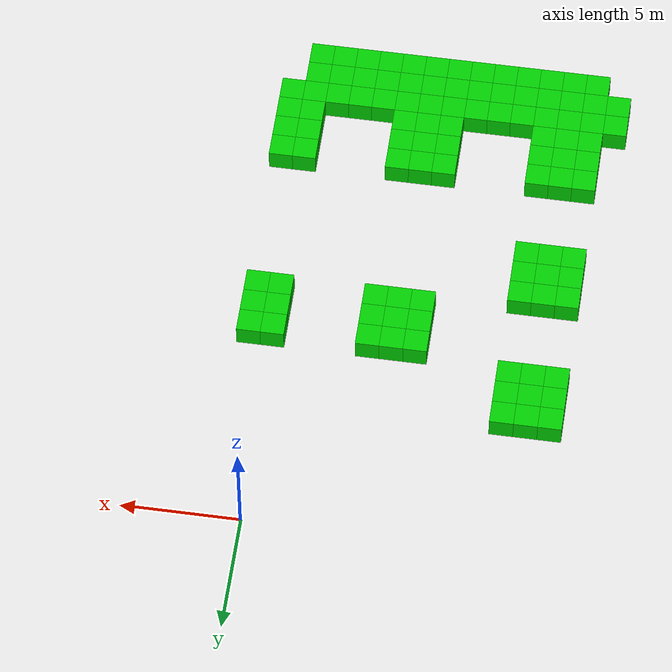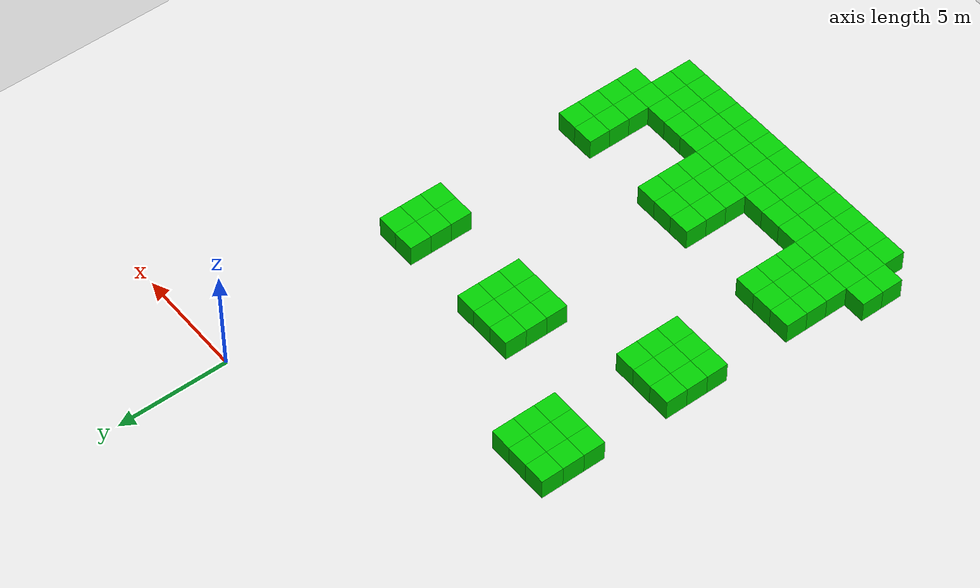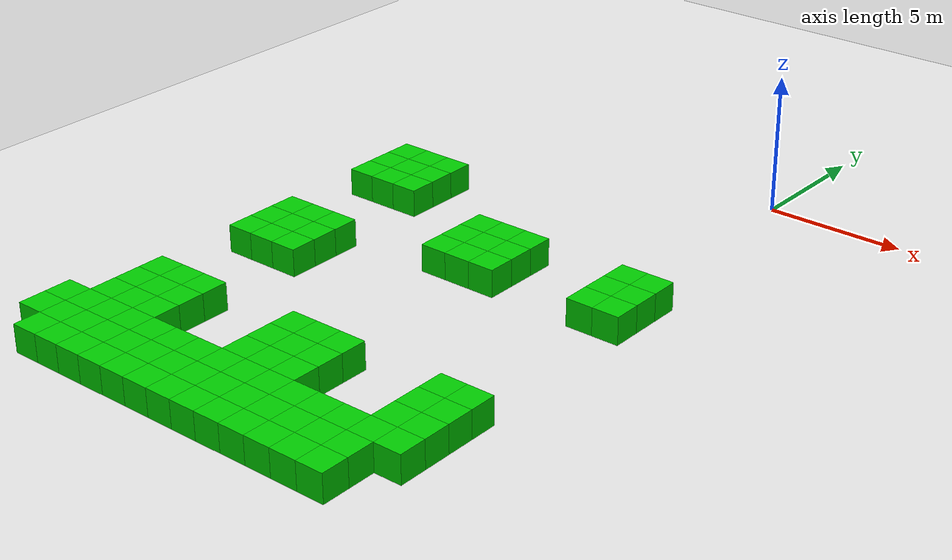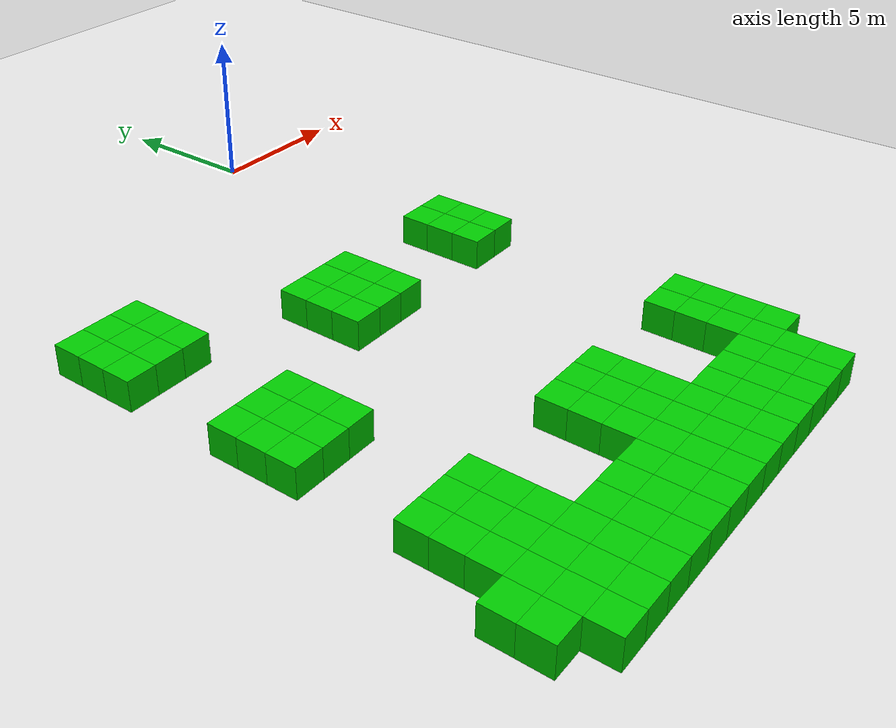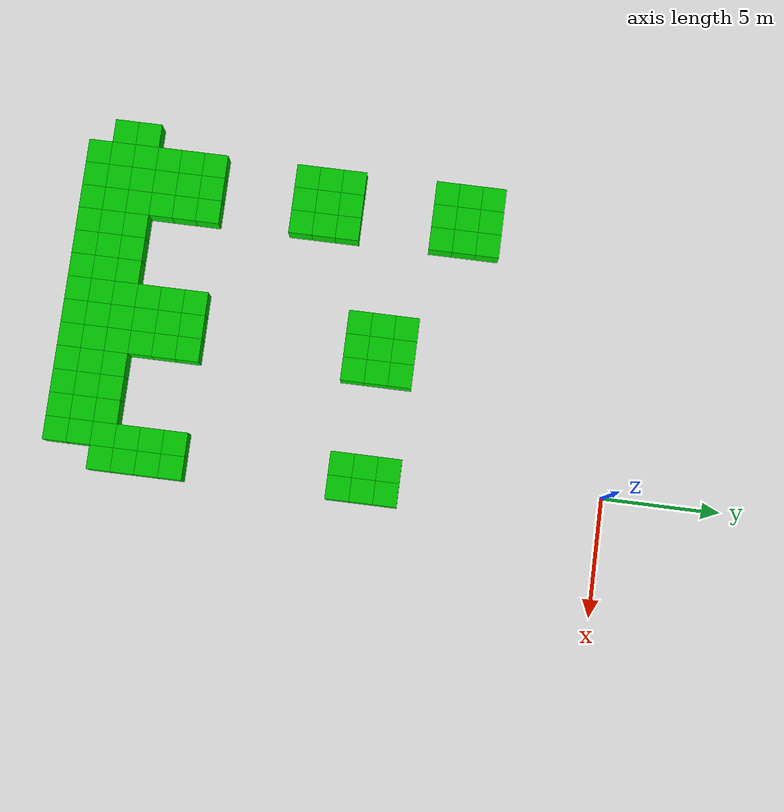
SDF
<sdf version="1.6">
 <world name="generated_maze">
  <model name="ground_plane">
   <static>true</static>
   <link name="link">
    <collision name="collision">
     <geometry><plane><normal>0 0 1</normal><size>100 100</size></plane></geometry>
    </collision>
    <visual name="visual">
     <geometry><plane><normal>0 0 1</normal><size>100 100</size></plane></geometry>
     <material>
      <ambient>0.9 0.9 0.9 1</ambient>
      <diffuse>0.9 0.9 0.9 1</diffuse>
      <specular>0.3 0.3 0.3 1</specular>
     </material>
    </visual>
   </link>
  </model>
  <model name="wall_30_12">
   <static>true</static>
   <pose>-12 -6 0.5 0 0 0</pose>
   <link name="link">
    <collision name="collision"><geometry><box><size>1 1 1</size></box></geometry></collision>
    <visual name="visual">
     <geometry><box><size>1 1 1</size></box></geometry>
     <material>
      <ambient>0.0 0.8 0.0 1</ambient>
      <diffuse>0.0 0.8 0.0 1</diffuse>
      <specular>0.1 0.1 0.1 1</specular>
     </material>
    </visual>
   </link>
  </model>
  <model name="wall_30_13">
   <static>true</static>
   <pose>-11 -6 0.5 0 0 0</pose>
   <link name="link">
    <collision name="collision"><geometry><box><size>1 1 1</size></box></geometry></collision>
    <visual name="visual">
     <geometry><box><size>1 1 1</size></box></geometry>
     <material>
      <ambient>0.0 0.8 0.0 1</ambient>
      <diffuse>0.0 0.8 0.0 1</diffuse>
      <specular>0.1 0.1 0.1 1</specular>
     </material>
    </visual>
   </link>
  </model>
  <model name="wall_30_14">
   <static>true</static>
   <pose>-10 -6 0.5 0 0 0</pose>
   <link name="link">
    <collision name="collision"><geometry><box><size>1 1 1</size></box></geometry></collision>
    <visual name="visual">
     <geometry><box><size>1 1 1</size></box></geometry>
     <material>
      <ambient>0.0 0.8 0.0 1</ambient>
      <diffuse>0.0 0.8 0.0 1</diffuse>
      <specular>0.1 0.1 0.1 1</specular>
     </material>
    </visual>
   </link>
  </model>
  <model name="wall_31_12">
   <static>true</static>
   <pose>-12 -7 0.5 0 0 0</pose>
   <link name="link">
    <collision name="collision"><geometry><box><size>1 1 1</size></box></geometry></collision>
    <visual name="visual">
     <geometry><box><size>1 1 1</size></box></geometry>
     <material>
      <ambient>0.0 0.8 0.0 1</ambient>
      <diffuse>0.0 0.8 0.0 1</diffuse>
      <specular>0.1 0.1 0.1 1</specular>
     </material>
    </visual>
   </link>
  </model>
  <model name="wall_31_13">
   <static>true</static>
   <pose>-11 -7 0.5 0 0 0</pose>
   <link name="link">
    <collision name="collision"><geometry><box><size>1 1 1</size></box></geometry></collision>
    <visual name="visual">
     <geometry><box><size>1 1 1</size></box></geometry>
     <material>
      <ambient>0.0 0.8 0.0 1</ambient>
      <diffuse>0.0 0.8 0.0 1</diffuse>
      <specular>0.1 0.1 0.1 1</specular>
     </material>
    </visual>
   </link>
  </model>
  <model name="wall_31_14">
   <static>true</static>
   <pose>-10 -7 0.5 0 0 0</pose>
   <link name="link">
    <collision name="collision"><geometry><box><size>1 1 1</size></box></geometry></collision>
    <visual name="visual">
     <geometry><box><size>1 1 1</size></box></geometry>
     <material>
      <ambient>0.0 0.8 0.0 1</ambient>
      <diffuse>0.0 0.8 0.0 1</diffuse>
      <specular>0.1 0.1 0.1 1</specular>
     </material>
    </visual>
   </link>
  </model>
  <model name="wall_32_12">
   <static>true</static>
   <pose>-12 -8 0.5 0 0 0</pose>
   <link name="link">
    <collision name="collision"><geometry><box><size>1 1 1</size></box></geometry></collision>
    <visual name="visual">
     <geometry><box><size>1 1 1</size></box></geometry>
     <material>
      <ambient>0.0 0.8 0.0 1</ambient>
      <diffuse>0.0 0.8 0.0 1</diffuse>
      <specular>0.1 0.1 0.1 1</specular>
     </material>
    </visual>
   </link>
  </model>
  <model name="wall_32_13">
   <static>true</static>
   <pose>-11 -8 0.5 0 0 0</pose>
   <link name="link">
    <collision name="collision"><geometry><box><size>1 1 1</size></box></geometry></collision>
    <visual name="visual">
     <geometry><box><size>1 1 1</size></box></geometry>
     <material>
      <ambient>0.0 0.8 0.0 1</ambient>
      <diffuse>0.0 0.8 0.0 1</diffuse>
      <specular>0.1 0.1 0.1 1</specular>
     </material>
    </visual>
   </link>
  </model>
  <model name="wall_32_14">
   <static>true</static>
   <pose>-10 -8 0.5 0 0 0</pose>
   <link name="link">
    <collision name="collision"><geometry><box><size>1 1 1</size></box></geometry></collision>
    <visual name="visual">
     <geometry><box><size>1 1 1</size></box></geometry>
     <material>
      <ambient>0.0 0.8 0.0 1</ambient>
      <diffuse>0.0 0.8 0.0 1</diffuse>
      <specular>0.1 0.1 0.1 1</specular>
     </material>
    </visual>
   </link>
  </model>
  <model name="wall_33_18">
   <static>true</static>
   <pose>-6 -9 0.5 0 0 0</pose>
   <link name="link">
    <collision name="collision"><geometry><box><size>1 1 1</size></box></geometry></collision>
    <visual name="visual">
     <geometry><box><size>1 1 1</size></box></geometry>
     <material>
      <ambient>0.0 0.8 0.0 1</ambient>
      <diffuse>0.0 0.8 0.0 1</diffuse>
      <specular>0.1 0.1 0.1 1</specular>
     </material>
    </visual>
   </link>
  </model>
  <model name="wall_33_19">
   <static>true</static>
   <pose>-5 -9 0.5 0 0 0</pose>
   <link name="link">
    <collision name="collision"><geometry><box><size>1 1 1</size></box></geometry></collision>
    <visual name="visual">
     <geometry><box><size>1 1 1</size></box></geometry>
     <material>
      <ambient>0.0 0.8 0.0 1</ambient>
      <diffuse>0.0 0.8 0.0 1</diffuse>
      <specular>0.1 0.1 0.1 1</specular>
     </material>
    </visual>
   </link>
  </model>
  <model name="wall_33_20">
   <static>true</static>
   <pose>-4 -9 0.5 0 0 0</pose>
   <link name="link">
    <collision name="collision"><geometry><box><size>1 1 1</size></box></geometry></collision>
    <visual name="visual">
     <geometry><box><size>1 1 1</size></box></geometry>
     <material>
      <ambient>0.0 0.8 0.0 1</ambient>
      <diffuse>0.0 0.8 0.0 1</diffuse>
      <specular>0.1 0.1 0.1 1</specular>
     </material>
    </visual>
   </link>
  </model>
  <model name="wall_33_24">
   <static>true</static>
   <pose>0 -9 0.5 0 0 0</pose>
   <link name="link">
    <collision name="collision"><geometry><box><size>1 1 1</size></box></geometry></collision>
    <visual name="visual">
     <geometry><box><size>1 1 1</size></box></geometry>
     <material>
      <ambient>0.0 0.8 0.0 1</ambient>
      <diffuse>0.0 0.8 0.0 1</diffuse>
      <specular>0.1 0.1 0.1 1</specular>
     </material>
    </visual>
   </link>
  </model>
  <model name="wall_33_25">
   <static>true</static>
   <pose>1 -9 0.5 0 0 0</pose>
   <link name="link">
    <collision name="collision"><geometry><box><size>1 1 1</size></box></geometry></collision>
    <visual name="visual">
     <geometry><box><size>1 1 1</size></box></geometry>
     <material>
      <ambient>0.0 0.8 0.0 1</ambient>
      <diffuse>0.0 0.8 0.0 1</diffuse>
      <specular>0.1 0.1 0.1 1</specular>
     </material>
    </visual>
   </link>
  </model>
  <model name="wall_34_18">
   <static>true</static>
   <pose>-6 -10 0.5 0 0 0</pose>
   <link name="link">
    <collision name="collision"><geometry><box><size>1 1 1</size></box></geometry></collision>
    <visual name="visual">
     <geometry><box><size>1 1 1</size></box></geometry>
     <material>
      <ambient>0.0 0.8 0.0 1</ambient>
      <diffuse>0.0 0.8 0.0 1</diffuse>
      <specular>0.1 0.1 0.1 1</specular>
     </material>
    </visual>
   </link>
  </model>
  <model name="wall_34_19">
   <static>true</static>
   <pose>-5 -10 0.5 0 0 0</pose>
   <link name="link">
    <collision name="collision"><geometry><box><size>1 1 1</size></box></geometry></collision>
    <visual name="visual">
     <geometry><box><size>1 1 1</size></box></geometry>
     <material>
      <ambient>0.0 0.8 0.0 1</ambient>
      <diffuse>0.0 0.8 0.0 1</diffuse>
      <specular>0.1 0.1 0.1 1</specular>
     </material>
    </visual>
   </link>
  </model>
  <model name="wall_34_20">
   <static>true</static>
   <pose>-4 -10 0.5 0 0 0</pose>
   <link name="link">
    <collision name="collision"><geometry><box><size>1 1 1</size></box></geometry></collision>
    <visual name="visual">
     <geometry><box><size>1 1 1</size></box></geometry>
     <material>
      <ambient>0.0 0.8 0.0 1</ambient>
      <diffuse>0.0 0.8 0.0 1</diffuse>
      <specular>0.1 0.1 0.1 1</specular>
     </material>
    </visual>
   </link>
  </model>
  <model name="wall_34_24">
   <static>true</static>
   <pose>0 -10 0.5 0 0 0</pose>
   <link name="link">
    <collision name="collision"><geometry><box><size>1 1 1</size></box></geometry></collision>
    <visual name="visual">
     <geometry><box><size>1 1 1</size></box></geometry>
     <material>
      <ambient>0.0 0.8 0.0 1</ambient>
      <diffuse>0.0 0.8 0.0 1</diffuse>
      <specular>0.1 0.1 0.1 1</specular>
     </material>
    </visual>
   </link>
  </model>
  <model name="wall_34_25">
   <static>true</static>
   <pose>1 -10 0.5 0 0 0</pose>
   <link name="link">
    <collision name="collision"><geometry><box><size>1 1 1</size></box></geometry></collision>
    <visual name="visual">
     <geometry><box><size>1 1 1</size></box></geometry>
     <material>
      <ambient>0.0 0.8 0.0 1</ambient>
      <diffuse>0.0 0.8 0.0 1</diffuse>
      <specular>0.1 0.1 0.1 1</specular>
     </material>
    </visual>
   </link>
  </model>
  <model name="wall_35_18">
   <static>true</static>
   <pose>-6 -11 0.5 0 0 0</pose>
   <link name="link">
    <collision name="collision"><geometry><box><size>1 1 1</size></box></geometry></collision>
    <visual name="visual">
     <geometry><box><size>1 1 1</size></box></geometry>
     <material>
      <ambient>0.0 0.8 0.0 1</ambient>
      <diffuse>0.0 0.8 0.0 1</diffuse>
      <specular>0.1 0.1 0.1 1</specular>
     </material>
    </visual>
   </link>
  </model>
  <model name="wall_35_19">
   <static>true</static>
   <pose>-5 -11 0.5 0 0 0</pose>
   <link name="link">
    <collision name="collision"><geometry><box><size>1 1 1</size></box></geometry></collision>
    <visual name="visual">
     <geometry><box><size>1 1 1</size></box></geometry>
     <material>
      <ambient>0.0 0.8 0.0 1</ambient>
      <diffuse>0.0 0.8 0.0 1</diffuse>
      <specular>0.1 0.1 0.1 1</specular>
     </material>
    </visual>
   </link>
  </model>
  <model name="wall_35_20">
   <static>true</static>
   <pose>-4 -11 0.5 0 0 0</pose>
   <link name="link">
    <collision name="collision"><geometry><box><size>1 1 1</size></box></geometry></collision>
    <visual name="visual">
     <geometry><box><size>1 1 1</size></box></geometry>
     <material>
      <ambient>0.0 0.8 0.0 1</ambient>
      <diffuse>0.0 0.8 0.0 1</diffuse>
      <specular>0.1 0.1 0.1 1</specular>
     </material>
    </visual>
   </link>
  </model>
  <model name="wall_35_24">
   <static>true</static>
   <pose>0 -11 0.5 0 0 0</pose>
   <link name="link">
    <collision name="collision"><geometry><box><size>1 1 1</size></box></geometry></collision>
    <visual name="visual">
     <geometry><box><size>1 1 1</size></box></geometry>
     <material>
      <ambient>0.0 0.8 0.0 1</ambient>
      <diffuse>0.0 0.8 0.0 1</diffuse>
      <specular>0.1 0.1 0.1 1</specular>
     </material>
    </visual>
   </link>
  </model>
  <model name="wall_35_25">
   <static>true</static>
   <pose>1 -11 0.5 0 0 0</pose>
   <link name="link">
    <collision name="collision"><geometry><box><size>1 1 1</size></box></geometry></collision>
    <visual name="visual">
     <geometry><box><size>1 1 1</size></box></geometry>
     <material>
      <ambient>0.0 0.8 0.0 1</ambient>
      <diffuse>0.0 0.8 0.0 1</diffuse>
      <specular>0.1 0.1 0.1 1</specular>
     </material>
    </visual>
   </link>
  </model>
  <model name="wall_36_12">
   <static>true</static>
   <pose>-12 -12 0.5 0 0 0</pose>
   <link name="link">
    <collision name="collision"><geometry><box><size>1 1 1</size></box></geometry></collision>
    <visual name="visual">
     <geometry><box><size>1 1 1</size></box></geometry>
     <material>
      <ambient>0.0 0.8 0.0 1</ambient>
      <diffuse>0.0 0.8 0.0 1</diffuse>
      <specular>0.1 0.1 0.1 1</specular>
     </material>
    </visual>
   </link>
  </model>
  <model name="wall_36_13">
   <static>true</static>
   <pose>-11 -12 0.5 0 0 0</pose>
   <link name="link">
    <collision name="collision"><geometry><box><size>1 1 1</size></box></geometry></collision>
    <visual name="visual">
     <geometry><box><size>1 1 1</size></box></geometry>
     <material>
      <ambient>0.0 0.8 0.0 1</ambient>
      <diffuse>0.0 0.8 0.0 1</diffuse>
      <specular>0.1 0.1 0.1 1</specular>
     </material>
    </visual>
   </link>
  </model>
  <model name="wall_36_14">
   <static>true</static>
   <pose>-10 -12 0.5 0 0 0</pose>
   <link name="link">
    <collision name="collision"><geometry><box><size>1 1 1</size></box></geometry></collision>
    <visual name="visual">
     <geometry><box><size>1 1 1</size></box></geometry>
     <material>
      <ambient>0.0 0.8 0.0 1</ambient>
      <diffuse>0.0 0.8 0.0 1</diffuse>
      <specular>0.1 0.1 0.1 1</specular>
     </material>
    </visual>
   </link>
  </model>
  <model name="wall_37_12">
   <static>true</static>
   <pose>-12 -13 0.5 0 0 0</pose>
   <link name="link">
    <collision name="collision"><geometry><box><size>1 1 1</size></box></geometry></collision>
    <visual name="visual">
     <geometry><box><size>1 1 1</size></box></geometry>
     <material>
      <ambient>0.0 0.8 0.0 1</ambient>
      <diffuse>0.0 0.8 0.0 1</diffuse>
      <specular>0.1 0.1 0.1 1</specular>
     </material>
    </visual>
   </link>
  </model>
  <model name="wall_37_13">
   <static>true</static>
   <pose>-11 -13 0.5 0 0 0</pose>
   <link name="link">
    <collision name="collision"><geometry><box><size>1 1 1</size></box></geometry></collision>
    <visual name="visual">
     <geometry><box><size>1 1 1</size></box></geometry>
     <material>
      <ambient>0.0 0.8 0.0 1</ambient>
      <diffuse>0.0 0.8 0.0 1</diffuse>
      <specular>0.1 0.1 0.1 1</specular>
     </material>
    </visual>
   </link>
  </model>
  <model name="wall_37_14">
   <static>true</static>
   <pose>-10 -13 0.5 0 0 0</pose>
   <link name="link">
    <collision name="collision"><geometry><box><size>1 1 1</size></box></geometry></collision>
    <visual name="visual">
     <geometry><box><size>1 1 1</size></box></geometry>
     <material>
      <ambient>0.0 0.8 0.0 1</ambient>
      <diffuse>0.0 0.8 0.0 1</diffuse>
      <specular>0.1 0.1 0.1 1</specular>
     </material>
    </visual>
   </link>
  </model>
  <model name="wall_38_12">
   <static>true</static>
   <pose>-12 -14 0.5 0 0 0</pose>
   <link name="link">
    <collision name="collision"><geometry><box><size>1 1 1</size></box></geometry></collision>
    <visual name="visual">
     <geometry><box><size>1 1 1</size></box></geometry>
     <material>
      <ambient>0.0 0.8 0.0 1</ambient>
      <diffuse>0.0 0.8 0.0 1</diffuse>
      <specular>0.1 0.1 0.1 1</specular>
     </material>
    </visual>
   </link>
  </model>
  <model name="wall_38_13">
   <static>true</static>
   <pose>-11 -14 0.5 0 0 0</pose>
   <link name="link">
    <collision name="collision"><geometry><box><size>1 1 1</size></box></geometry></collision>
    <visual name="visual">
     <geometry><box><size>1 1 1</size></box></geometry>
     <material>
      <ambient>0.0 0.8 0.0 1</ambient>
      <diffuse>0.0 0.8 0.0 1</diffuse>
      <specular>0.1 0.1 0.1 1</specular>
     </material>
    </visual>
   </link>
  </model>
  <model name="wall_38_14">
   <static>true</static>
   <pose>-10 -14 0.5 0 0 0</pose>
   <link name="link">
    <collision name="collision"><geometry><box><size>1 1 1</size></box></geometry></collision>
    <visual name="visual">
     <geometry><box><size>1 1 1</size></box></geometry>
     <material>
      <ambient>0.0 0.8 0.0 1</ambient>
      <diffuse>0.0 0.8 0.0 1</diffuse>
      <specular>0.1 0.1 0.1 1</specular>
     </material>
    </visual>
   </link>
  </model>
  <model name="wall_42_12">
   <static>true</static>
   <pose>-12 -18 0.5 0 0 0</pose>
   <link name="link">
    <collision name="collision"><geometry><box><size>1 1 1</size></box></geometry></collision>
    <visual name="visual">
     <geometry><box><size>1 1 1</size></box></geometry>
     <material>
      <ambient>0.0 0.8 0.0 1</ambient>
      <diffuse>0.0 0.8 0.0 1</diffuse>
      <specular>0.1 0.1 0.1 1</specular>
     </material>
    </visual>
   </link>
  </model>
  <model name="wall_42_13">
   <static>true</static>
   <pose>-11 -18 0.5 0 0 0</pose>
   <link name="link">
    <collision name="collision"><geometry><box><size>1 1 1</size></box></geometry></collision>
    <visual name="visual">
     <geometry><box><size>1 1 1</size></box></geometry>
     <material>
      <ambient>0.0 0.8 0.0 1</ambient>
      <diffuse>0.0 0.8 0.0 1</diffuse>
      <specular>0.1 0.1 0.1 1</specular>
     </material>
    </visual>
   </link>
  </model>
  <model name="wall_42_14">
   <static>true</static>
   <pose>-10 -18 0.5 0 0 0</pose>
   <link name="link">
    <collision name="collision"><geometry><box><size>1 1 1</size></box></geometry></collision>
    <visual name="visual">
     <geometry><box><size>1 1 1</size></box></geometry>
     <material>
      <ambient>0.0 0.8 0.0 1</ambient>
      <diffuse>0.0 0.8 0.0 1</diffuse>
      <specular>0.1 0.1 0.1 1</specular>
     </material>
    </visual>
   </link>
  </model>
  <model name="wall_42_18">
   <static>true</static>
   <pose>-6 -18 0.5 0 0 0</pose>
   <link name="link">
    <collision name="collision"><geometry><box><size>1 1 1</size></box></geometry></collision>
    <visual name="visual">
     <geometry><box><size>1 1 1</size></box></geometry>
     <material>
      <ambient>0.0 0.8 0.0 1</ambient>
      <diffuse>0.0 0.8 0.0 1</diffuse>
      <specular>0.1 0.1 0.1 1</specular>
     </material>
    </visual>
   </link>
  </model>
  <model name="wall_42_19">
   <static>true</static>
   <pose>-5 -18 0.5 0 0 0</pose>
   <link name="link">
    <collision name="collision"><geometry><box><size>1 1 1</size></box></geometry></collision>
    <visual name="visual">
     <geometry><box><size>1 1 1</size></box></geometry>
     <material>
      <ambient>0.0 0.8 0.0 1</ambient>
      <diffuse>0.0 0.8 0.0 1</diffuse>
      <specular>0.1 0.1 0.1 1</specular>
     </material>
    </visual>
   </link>
  </model>
  <model name="wall_42_20">
   <static>true</static>
   <pose>-4 -18 0.5 0 0 0</pose>
   <link name="link">
    <collision name="collision"><geometry><box><size>1 1 1</size></box></geometry></collision>
    <visual name="visual">
     <geometry><box><size>1 1 1</size></box></geometry>
     <material>
      <ambient>0.0 0.8 0.0 1</ambient>
      <diffuse>0.0 0.8 0.0 1</diffuse>
      <specular>0.1 0.1 0.1 1</specular>
     </material>
    </visual>
   </link>
  </model>
  <model name="wall_42_24">
   <static>true</static>
   <pose>0 -18 0.5 0 0 0</pose>
   <link name="link">
    <collision name="collision"><geometry><box><size>1 1 1</size></box></geometry></collision>
    <visual name="visual">
     <geometry><box><size>1 1 1</size></box></geometry>
     <material>
      <ambient>0.0 0.8 0.0 1</ambient>
      <diffuse>0.0 0.8 0.0 1</diffuse>
      <specular>0.1 0.1 0.1 1</specular>
     </material>
    </visual>
   </link>
  </model>
  <model name="wall_42_25">
   <static>true</static>
   <pose>1 -18 0.5 0 0 0</pose>
   <link name="link">
    <collision name="collision"><geometry><box><size>1 1 1</size></box></geometry></collision>
    <visual name="visual">
     <geometry><box><size>1 1 1</size></box></geometry>
     <material>
      <ambient>0.0 0.8 0.0 1</ambient>
      <diffuse>0.0 0.8 0.0 1</diffuse>
      <specular>0.1 0.1 0.1 1</specular>
     </material>
    </visual>
   </link>
  </model>
  <model name="wall_43_12">
   <static>true</static>
   <pose>-12 -19 0.5 0 0 0</pose>
   <link name="link">
    <collision name="collision"><geometry><box><size>1 1 1</size></box></geometry></collision>
    <visual name="visual">
     <geometry><box><size>1 1 1</size></box></geometry>
     <material>
      <ambient>0.0 0.8 0.0 1</ambient>
      <diffuse>0.0 0.8 0.0 1</diffuse>
      <specular>0.1 0.1 0.1 1</specular>
     </material>
    </visual>
   </link>
  </model>
  <model name="wall_43_13">
   <static>true</static>
   <pose>-11 -19 0.5 0 0 0</pose>
   <link name="link">
    <collision name="collision"><geometry><box><size>1 1 1</size></box></geometry></collision>
    <visual name="visual">
     <geometry><box><size>1 1 1</size></box></geometry>
     <material>
      <ambient>0.0 0.8 0.0 1</ambient>
      <diffuse>0.0 0.8 0.0 1</diffuse>
      <specular>0.1 0.1 0.1 1</specular>
     </material>
    </visual>
   </link>
  </model>
  <model name="wall_43_14">
   <static>true</static>
   <pose>-10 -19 0.5 0 0 0</pose>
   <link name="link">
    <collision name="collision"><geometry><box><size>1 1 1</size></box></geometry></collision>
    <visual name="visual">
     <geometry><box><size>1 1 1</size></box></geometry>
     <material>
      <ambient>0.0 0.8 0.0 1</ambient>
      <diffuse>0.0 0.8 0.0 1</diffuse>
      <specular>0.1 0.1 0.1 1</specular>
     </material>
    </visual>
   </link>
  </model>
  <model name="wall_43_18">
   <static>true</static>
   <pose>-6 -19 0.5 0 0 0</pose>
   <link name="link">
    <collision name="collision"><geometry><box><size>1 1 1</size></box></geometry></collision>
    <visual name="visual">
     <geometry><box><size>1 1 1</size></box></geometry>
     <material>
      <ambient>0.0 0.8 0.0 1</ambient>
      <diffuse>0.0 0.8 0.0 1</diffuse>
      <specular>0.1 0.1 0.1 1</specular>
     </material>
    </visual>
   </link>
  </model>
  <model name="wall_43_19">
   <static>true</static>
   <pose>-5 -19 0.5 0 0 0</pose>
   <link name="link">
    <collision name="collision"><geometry><box><size>1 1 1</size></box></geometry></collision>
    <visual name="visual">
     <geometry><box><size>1 1 1</size></box></geometry>
     <material>
      <ambient>0.0 0.8 0.0 1</ambient>
      <diffuse>0.0 0.8 0.0 1</diffuse>
      <specular>0.1 0.1 0.1 1</specular>
     </material>
    </visual>
   </link>
  </model>
  <model name="wall_43_20">
   <static>true</static>
   <pose>-4 -19 0.5 0 0 0</pose>
   <link name="link">
    <collision name="collision"><geometry><box><size>1 1 1</size></box></geometry></collision>
    <visual name="visual">
     <geometry><box><size>1 1 1</size></box></geometry>
     <material>
      <ambient>0.0 0.8 0.0 1</ambient>
      <diffuse>0.0 0.8 0.0 1</diffuse>
      <specular>0.1 0.1 0.1 1</specular>
     </material>
    </visual>
   </link>
  </model>
  <model name="wall_43_24">
   <static>true</static>
   <pose>0 -19 0.5 0 0 0</pose>
   <link name="link">
    <collision name="collision"><geometry><box><size>1 1 1</size></box></geometry></collision>
    <visual name="visual">
     <geometry><box><size>1 1 1</size></box></geometry>
     <material>
      <ambient>0.0 0.8 0.0 1</ambient>
      <diffuse>0.0 0.8 0.0 1</diffuse>
      <specular>0.1 0.1 0.1 1</specular>
     </material>
    </visual>
   </link>
  </model>
  <model name="wall_43_25">
   <static>true</static>
   <pose>1 -19 0.5 0 0 0</pose>
   <link name="link">
    <collision name="collision"><geometry><box><size>1 1 1</size></box></geometry></collision>
    <visual name="visual">
     <geometry><box><size>1 1 1</size></box></geometry>
     <material>
      <ambient>0.0 0.8 0.0 1</ambient>
      <diffuse>0.0 0.8 0.0 1</diffuse>
      <specular>0.1 0.1 0.1 1</specular>
     </material>
    </visual>
   </link>
  </model>
  <model name="wall_44_12">
   <static>true</static>
   <pose>-12 -20 0.5 0 0 0</pose>
   <link name="link">
    <collision name="collision"><geometry><box><size>1 1 1</size></box></geometry></collision>
    <visual name="visual">
     <geometry><box><size>1 1 1</size></box></geometry>
     <material>
      <ambient>0.0 0.8 0.0 1</ambient>
      <diffuse>0.0 0.8 0.0 1</diffuse>
      <specular>0.1 0.1 0.1 1</specular>
     </material>
    </visual>
   </link>
  </model>
  <model name="wall_44_13">
   <static>true</static>
   <pose>-11 -20 0.5 0 0 0</pose>
   <link name="link">
    <collision name="collision"><geometry><box><size>1 1 1</size></box></geometry></collision>
    <visual name="visual">
     <geometry><box><size>1 1 1</size></box></geometry>
     <material>
      <ambient>0.0 0.8 0.0 1</ambient>
      <diffuse>0.0 0.8 0.0 1</diffuse>
      <specular>0.1 0.1 0.1 1</specular>
     </material>
    </visual>
   </link>
  </model>
  <model name="wall_44_14">
   <static>true</static>
   <pose>-10 -20 0.5 0 0 0</pose>
   <link name="link">
    <collision name="collision"><geometry><box><size>1 1 1</size></box></geometry></collision>
    <visual name="visual">
     <geometry><box><size>1 1 1</size></box></geometry>
     <material>
      <ambient>0.0 0.8 0.0 1</ambient>
      <diffuse>0.0 0.8 0.0 1</diffuse>
      <specular>0.1 0.1 0.1 1</specular>
     </material>
    </visual>
   </link>
  </model>
  <model name="wall_44_18">
   <static>true</static>
   <pose>-6 -20 0.5 0 0 0</pose>
   <link name="link">
    <collision name="collision"><geometry><box><size>1 1 1</size></box></geometry></collision>
    <visual name="visual">
     <geometry><box><size>1 1 1</size></box></geometry>
     <material>
      <ambient>0.0 0.8 0.0 1</ambient>
      <diffuse>0.0 0.8 0.0 1</diffuse>
      <specular>0.1 0.1 0.1 1</specular>
     </material>
    </visual>
   </link>
  </model>
  <model name="wall_44_19">
   <static>true</static>
   <pose>-5 -20 0.5 0 0 0</pose>
   <link name="link">
    <collision name="collision"><geometry><box><size>1 1 1</size></box></geometry></collision>
    <visual name="visual">
     <geometry><box><size>1 1 1</size></box></geometry>
     <material>
      <ambient>0.0 0.8 0.0 1</ambient>
      <diffuse>0.0 0.8 0.0 1</diffuse>
      <specular>0.1 0.1 0.1 1</specular>
     </material>
    </visual>
   </link>
  </model>
  <model name="wall_44_20">
   <static>true</static>
   <pose>-4 -20 0.5 0 0 0</pose>
   <link name="link">
    <collision name="collision"><geometry><box><size>1 1 1</size></box></geometry></collision>
    <visual name="visual">
     <geometry><box><size>1 1 1</size></box></geometry>
     <material>
      <ambient>0.0 0.8 0.0 1</ambient>
      <diffuse>0.0 0.8 0.0 1</diffuse>
      <specular>0.1 0.1 0.1 1</specular>
     </material>
    </visual>
   </link>
  </model>
  <model name="wall_44_24">
   <static>true</static>
   <pose>0 -20 0.5 0 0 0</pose>
   <link name="link">
    <collision name="collision"><geometry><box><size>1 1 1</size></box></geometry></collision>
    <visual name="visual">
     <geometry><box><size>1 1 1</size></box></geometry>
     <material>
      <ambient>0.0 0.8 0.0 1</ambient>
      <diffuse>0.0 0.8 0.0 1</diffuse>
      <specular>0.1 0.1 0.1 1</specular>
     </material>
    </visual>
   </link>
  </model>
  <model name="wall_44_25">
   <static>true</static>
   <pose>1 -20 0.5 0 0 0</pose>
   <link name="link">
    <collision name="collision"><geometry><box><size>1 1 1</size></box></geometry></collision>
    <visual name="visual">
     <geometry><box><size>1 1 1</size></box></geometry>
     <material>
      <ambient>0.0 0.8 0.0 1</ambient>
      <diffuse>0.0 0.8 0.0 1</diffuse>
      <specular>0.1 0.1 0.1 1</specular>
     </material>
    </visual>
   </link>
  </model>
  <model name="wall_45_11">
   <static>true</static>
   <pose>-13 -21 0.5 0 0 0</pose>
   <link name="link">
    <collision name="collision"><geometry><box><size>1 1 1</size></box></geometry></collision>
    <visual name="visual">
     <geometry><box><size>1 1 1</size></box></geometry>
     <material>
      <ambient>0.0 0.8 0.0 1</ambient>
      <diffuse>0.0 0.8 0.0 1</diffuse>
      <specular>0.1 0.1 0.1 1</specular>
     </material>
    </visual>
   </link>
  </model>
  <model name="wall_45_12">
   <static>true</static>
   <pose>-12 -21 0.5 0 0 0</pose>
   <link name="link">
    <collision name="collision"><geometry><box><size>1 1 1</size></box></geometry></collision>
    <visual name="visual">
     <geometry><box><size>1 1 1</size></box></geometry>
     <material>
      <ambient>0.0 0.8 0.0 1</ambient>
      <diffuse>0.0 0.8 0.0 1</diffuse>
      <specular>0.1 0.1 0.1 1</specular>
     </material>
    </visual>
   </link>
  </model>
  <model name="wall_45_13">
   <static>true</static>
   <pose>-11 -21 0.5 0 0 0</pose>
   <link name="link">
    <collision name="collision"><geometry><box><size>1 1 1</size></box></geometry></collision>
    <visual name="visual">
     <geometry><box><size>1 1 1</size></box></geometry>
     <material>
      <ambient>0.0 0.8 0.0 1</ambient>
      <diffuse>0.0 0.8 0.0 1</diffuse>
      <specular>0.1 0.1 0.1 1</specular>
     </material>
    </visual>
   </link>
  </model>
  <model name="wall_45_14">
   <static>true</static>
   <pose>-10 -21 0.5 0 0 0</pose>
   <link name="link">
    <collision name="collision"><geometry><box><size>1 1 1</size></box></geometry></collision>
    <visual name="visual">
     <geometry><box><size>1 1 1</size></box></geometry>
     <material>
      <ambient>0.0 0.8 0.0 1</ambient>
      <diffuse>0.0 0.8 0.0 1</diffuse>
      <specular>0.1 0.1 0.1 1</specular>
     </material>
    </visual>
   </link>
  </model>
  <model name="wall_45_15">
   <static>true</static>
   <pose>-9 -21 0.5 0 0 0</pose>
   <link name="link">
    <collision name="collision"><geometry><box><size>1 1 1</size></box></geometry></collision>
    <visual name="visual">
     <geometry><box><size>1 1 1</size></box></geometry>
     <material>
      <ambient>0.0 0.8 0.0 1</ambient>
      <diffuse>0.0 0.8 0.0 1</diffuse>
      <specular>0.1 0.1 0.1 1</specular>
     </material>
    </visual>
   </link>
  </model>
  <model name="wall_45_16">
   <static>true</static>
   <pose>-8 -21 0.5 0 0 0</pose>
   <link name="link">
    <collision name="collision"><geometry><box><size>1 1 1</size></box></geometry></collision>
    <visual name="visual">
     <geometry><box><size>1 1 1</size></box></geometry>
     <material>
      <ambient>0.0 0.8 0.0 1</ambient>
      <diffuse>0.0 0.8 0.0 1</diffuse>
      <specular>0.1 0.1 0.1 1</specular>
     </material>
    </visual>
   </link>
  </model>
  <model name="wall_45_17">
   <static>true</static>
   <pose>-7 -21 0.5 0 0 0</pose>
   <link name="link">
    <collision name="collision"><geometry><box><size>1 1 1</size></box></geometry></collision>
    <visual name="visual">
     <geometry><box><size>1 1 1</size></box></geometry>
     <material>
      <ambient>0.0 0.8 0.0 1</ambient>
      <diffuse>0.0 0.8 0.0 1</diffuse>
      <specular>0.1 0.1 0.1 1</specular>
     </material>
    </visual>
   </link>
  </model>
  <model name="wall_45_18">
   <static>true</static>
   <pose>-6 -21 0.5 0 0 0</pose>
   <link name="link">
    <collision name="collision"><geometry><box><size>1 1 1</size></box></geometry></collision>
    <visual name="visual">
     <geometry><box><size>1 1 1</size></box></geometry>
     <material>
      <ambient>0.0 0.8 0.0 1</ambient>
      <diffuse>0.0 0.8 0.0 1</diffuse>
      <specular>0.1 0.1 0.1 1</specular>
     </material>
    </visual>
   </link>
  </model>
  <model name="wall_45_19">
   <static>true</static>
   <pose>-5 -21 0.5 0 0 0</pose>
   <link name="link">
    <collision name="collision"><geometry><box><size>1 1 1</size></box></geometry></collision>
    <visual name="visual">
     <geometry><box><size>1 1 1</size></box></geometry>
     <material>
      <ambient>0.0 0.8 0.0 1</ambient>
      <diffuse>0.0 0.8 0.0 1</diffuse>
      <specular>0.1 0.1 0.1 1</specular>
     </material>
    </visual>
   </link>
  </model>
  <model name="wall_45_20">
   <static>true</static>
   <pose>-4 -21 0.5 0 0 0</pose>
   <link name="link">
    <collision name="collision"><geometry><box><size>1 1 1</size></box></geometry></collision>
    <visual name="visual">
     <geometry><box><size>1 1 1</size></box></geometry>
     <material>
      <ambient>0.0 0.8 0.0 1</ambient>
      <diffuse>0.0 0.8 0.0 1</diffuse>
      <specular>0.1 0.1 0.1 1</specular>
     </material>
    </visual>
   </link>
  </model>
  <model name="wall_45_21">
   <static>true</static>
   <pose>-3 -21 0.5 0 0 0</pose>
   <link name="link">
    <collision name="collision"><geometry><box><size>1 1 1</size></box></geometry></collision>
    <visual name="visual">
     <geometry><box><size>1 1 1</size></box></geometry>
     <material>
      <ambient>0.0 0.8 0.0 1</ambient>
      <diffuse>0.0 0.8 0.0 1</diffuse>
      <specular>0.1 0.1 0.1 1</specular>
     </material>
    </visual>
   </link>
  </model>
  <model name="wall_45_22">
   <static>true</static>
   <pose>-2 -21 0.5 0 0 0</pose>
   <link name="link">
    <collision name="collision"><geometry><box><size>1 1 1</size></box></geometry></collision>
    <visual name="visual">
     <geometry><box><size>1 1 1</size></box></geometry>
     <material>
      <ambient>0.0 0.8 0.0 1</ambient>
      <diffuse>0.0 0.8 0.0 1</diffuse>
      <specular>0.1 0.1 0.1 1</specular>
     </material>
    </visual>
   </link>
  </model>
  <model name="wall_45_23">
   <static>true</static>
   <pose>-1 -21 0.5 0 0 0</pose>
   <link name="link">
    <collision name="collision"><geometry><box><size>1 1 1</size></box></geometry></collision>
    <visual name="visual">
     <geometry><box><size>1 1 1</size></box></geometry>
     <material>
      <ambient>0.0 0.8 0.0 1</ambient>
      <diffuse>0.0 0.8 0.0 1</diffuse>
      <specular>0.1 0.1 0.1 1</specular>
     </material>
    </visual>
   </link>
  </model>
  <model name="wall_45_24">
   <static>true</static>
   <pose>0 -21 0.5 0 0 0</pose>
   <link name="link">
    <collision name="collision"><geometry><box><size>1 1 1</size></box></geometry></collision>
    <visual name="visual">
     <geometry><box><size>1 1 1</size></box></geometry>
     <material>
      <ambient>0.0 0.8 0.0 1</ambient>
      <diffuse>0.0 0.8 0.0 1</diffuse>
      <specular>0.1 0.1 0.1 1</specular>
     </material>
    </visual>
   </link>
  </model>
  <model name="wall_45_25">
   <static>true</static>
   <pose>1 -21 0.5 0 0 0</pose>
   <link name="link">
    <collision name="collision"><geometry><box><size>1 1 1</size></box></geometry></collision>
    <visual name="visual">
     <geometry><box><size>1 1 1</size></box></geometry>
     <material>
      <ambient>0.0 0.8 0.0 1</ambient>
      <diffuse>0.0 0.8 0.0 1</diffuse>
      <specular>0.1 0.1 0.1 1</specular>
     </material>
    </visual>
   </link>
  </model>
  <model name="wall_46_11">
   <static>true</static>
   <pose>-13 -22 0.5 0 0 0</pose>
   <link name="link">
    <collision name="collision"><geometry><box><size>1 1 1</size></box></geometry></collision>
    <visual name="visual">
     <geometry><box><size>1 1 1</size></box></geometry>
     <material>
      <ambient>0.0 0.8 0.0 1</ambient>
      <diffuse>0.0 0.8 0.0 1</diffuse>
      <specular>0.1 0.1 0.1 1</specular>
     </material>
    </visual>
   </link>
  </model>
  <model name="wall_46_12">
   <static>true</static>
   <pose>-12 -22 0.5 0 0 0</pose>
   <link name="link">
    <collision name="collision"><geometry><box><size>1 1 1</size></box></geometry></collision>
    <visual name="visual">
     <geometry><box><size>1 1 1</size></box></geometry>
     <material>
      <ambient>0.0 0.8 0.0 1</ambient>
      <diffuse>0.0 0.8 0.0 1</diffuse>
      <specular>0.1 0.1 0.1 1</specular>
     </material>
    </visual>
   </link>
  </model>
  <model name="wall_46_13">
   <static>true</static>
   <pose>-11 -22 0.5 0 0 0</pose>
   <link name="link">
    <collision name="collision"><geometry><box><size>1 1 1</size></box></geometry></collision>
    <visual name="visual">
     <geometry><box><size>1 1 1</size></box></geometry>
     <material>
      <ambient>0.0 0.8 0.0 1</ambient>
      <diffuse>0.0 0.8 0.0 1</diffuse>
      <specular>0.1 0.1 0.1 1</specular>
     </material>
    </visual>
   </link>
  </model>
  <model name="wall_46_14">
   <static>true</static>
   <pose>-10 -22 0.5 0 0 0</pose>
   <link name="link">
    <collision name="collision"><geometry><box><size>1 1 1</size></box></geometry></collision>
    <visual name="visual">
     <geometry><box><size>1 1 1</size></box></geometry>
     <material>
      <ambient>0.0 0.8 0.0 1</ambient>
      <diffuse>0.0 0.8 0.0 1</diffuse>
      <specular>0.1 0.1 0.1 1</specular>
     </material>
    </visual>
   </link>
  </model>
  <model name="wall_46_15">
   <static>true</static>
   <pose>-9 -22 0.5 0 0 0</pose>
   <link name="link">
    <collision name="collision"><geometry><box><size>1 1 1</size></box></geometry></collision>
    <visual name="visual">
     <geometry><box><size>1 1 1</size></box></geometry>
     <material>
      <ambient>0.0 0.8 0.0 1</ambient>
      <diffuse>0.0 0.8 0.0 1</diffuse>
      <specular>0.1 0.1 0.1 1</specular>
     </material>
    </visual>
   </link>
  </model>
  <model name="wall_46_16">
   <static>true</static>
   <pose>-8 -22 0.5 0 0 0</pose>
   <link name="link">
    <collision name="collision"><geometry><box><size>1 1 1</size></box></geometry></collision>
    <visual name="visual">
     <geometry><box><size>1 1 1</size></box></geometry>
     <material>
      <ambient>0.0 0.8 0.0 1</ambient>
      <diffuse>0.0 0.8 0.0 1</diffuse>
      <specular>0.1 0.1 0.1 1</specular>
     </material>
    </visual>
   </link>
  </model>
  <model name="wall_46_17">
   <static>true</static>
   <pose>-7 -22 0.5 0 0 0</pose>
   <link name="link">
    <collision name="collision"><geometry><box><size>1 1 1</size></box></geometry></collision>
    <visual name="visual">
     <geometry><box><size>1 1 1</size></box></geometry>
     <material>
      <ambient>0.0 0.8 0.0 1</ambient>
      <diffuse>0.0 0.8 0.0 1</diffuse>
      <specular>0.1 0.1 0.1 1</specular>
     </material>
    </visual>
   </link>
  </model>
  <model name="wall_46_18">
   <static>true</static>
   <pose>-6 -22 0.5 0 0 0</pose>
   <link name="link">
    <collision name="collision"><geometry><box><size>1 1 1</size></box></geometry></collision>
    <visual name="visual">
     <geometry><box><size>1 1 1</size></box></geometry>
     <material>
      <ambient>0.0 0.8 0.0 1</ambient>
      <diffuse>0.0 0.8 0.0 1</diffuse>
      <specular>0.1 0.1 0.1 1</specular>
     </material>
    </visual>
   </link>
  </model>
  <model name="wall_46_19">
   <static>true</static>
   <pose>-5 -22 0.5 0 0 0</pose>
   <link name="link">
    <collision name="collision"><geometry><box><size>1 1 1</size></box></geometry></collision>
    <visual name="visual">
     <geometry><box><size>1 1 1</size></box></geometry>
     <material>
      <ambient>0.0 0.8 0.0 1</ambient>
      <diffuse>0.0 0.8 0.0 1</diffuse>
      <specular>0.1 0.1 0.1 1</specular>
     </material>
    </visual>
   </link>
  </model>
  <model name="wall_46_20">
   <static>true</static>
   <pose>-4 -22 0.5 0 0 0</pose>
   <link name="link">
    <collision name="collision"><geometry><box><size>1 1 1</size></box></geometry></collision>
    <visual name="visual">
     <geometry><box><size>1 1 1</size></box></geometry>
     <material>
      <ambient>0.0 0.8 0.0 1</ambient>
      <diffuse>0.0 0.8 0.0 1</diffuse>
      <specular>0.1 0.1 0.1 1</specular>
     </material>
    </visual>
   </link>
  </model>
  <model name="wall_46_21">
   <static>true</static>
   <pose>-3 -22 0.5 0 0 0</pose>
   <link name="link">
    <collision name="collision"><geometry><box><size>1 1 1</size></box></geometry></collision>
    <visual name="visual">
     <geometry><box><size>1 1 1</size></box></geometry>
     <material>
      <ambient>0.0 0.8 0.0 1</ambient>
      <diffuse>0.0 0.8 0.0 1</diffuse>
      <specular>0.1 0.1 0.1 1</specular>
     </material>
    </visual>
   </link>
  </model>
  <model name="wall_46_22">
   <static>true</static>
   <pose>-2 -22 0.5 0 0 0</pose>
   <link name="link">
    <collision name="collision"><geometry><box><size>1 1 1</size></box></geometry></collision>
    <visual name="visual">
     <geometry><box><size>1 1 1</size></box></geometry>
     <material>
      <ambient>0.0 0.8 0.0 1</ambient>
      <diffuse>0.0 0.8 0.0 1</diffuse>
      <specular>0.1 0.1 0.1 1</specular>
     </material>
    </visual>
   </link>
  </model>
  <model name="wall_46_23">
   <static>true</static>
   <pose>-1 -22 0.5 0 0 0</pose>
   <link name="link">
    <collision name="collision"><geometry><box><size>1 1 1</size></box></geometry></collision>
    <visual name="visual">
     <geometry><box><size>1 1 1</size></box></geometry>
     <material>
      <ambient>0.0 0.8 0.0 1</ambient>
      <diffuse>0.0 0.8 0.0 1</diffuse>
      <specular>0.1 0.1 0.1 1</specular>
     </material>
    </visual>
   </link>
  </model>
  <model name="wall_46_24">
   <static>true</static>
   <pose>0 -22 0.5 0 0 0</pose>
   <link name="link">
    <collision name="collision"><geometry><box><size>1 1 1</size></box></geometry></collision>
    <visual name="visual">
     <geometry><box><size>1 1 1</size></box></geometry>
     <material>
      <ambient>0.0 0.8 0.0 1</ambient>
      <diffuse>0.0 0.8 0.0 1</diffuse>
      <specular>0.1 0.1 0.1 1</specular>
     </material>
    </visual>
   </link>
  </model>
  <model name="wall_47_12">
   <static>true</static>
   <pose>-12 -23 0.5 0 0 0</pose>
   <link name="link">
    <collision name="collision"><geometry><box><size>1 1 1</size></box></geometry></collision>
    <visual name="visual">
     <geometry><box><size>1 1 1</size></box></geometry>
     <material>
      <ambient>0.0 0.8 0.0 1</ambient>
      <diffuse>0.0 0.8 0.0 1</diffuse>
      <specular>0.1 0.1 0.1 1</specular>
     </material>
    </visual>
   </link>
  </model>
  <model name="wall_47_13">
   <static>true</static>
   <pose>-11 -23 0.5 0 0 0</pose>
   <link name="link">
    <collision name="collision"><geometry><box><size>1 1 1</size></box></geometry></collision>
    <visual name="visual">
     <geometry><box><size>1 1 1</size></box></geometry>
     <material>
      <ambient>0.0 0.8 0.0 1</ambient>
      <diffuse>0.0 0.8 0.0 1</diffuse>
      <specular>0.1 0.1 0.1 1</specular>
     </material>
    </visual>
   </link>
  </model>
  <model name="wall_47_14">
   <static>true</static>
   <pose>-10 -23 0.5 0 0 0</pose>
   <link name="link">
    <collision name="collision"><geometry><box><size>1 1 1</size></box></geometry></collision>
    <visual name="visual">
     <geometry><box><size>1 1 1</size></box></geometry>
     <material>
      <ambient>0.0 0.8 0.0 1</ambient>
      <diffuse>0.0 0.8 0.0 1</diffuse>
      <specular>0.1 0.1 0.1 1</specular>
     </material>
    </visual>
   </link>
  </model>
  <model name="wall_47_15">
   <static>true</static>
   <pose>-9 -23 0.5 0 0 0</pose>
   <link name="link">
    <collision name="collision"><geometry><box><size>1 1 1</size></box></geometry></collision>
    <visual name="visual">
     <geometry><box><size>1 1 1</size></box></geometry>
     <material>
      <ambient>0.0 0.8 0.0 1</ambient>
      <diffuse>0.0 0.8 0.0 1</diffuse>
      <specular>0.1 0.1 0.1 1</specular>
     </material>
    </visual>
   </link>
  </model>
  <model name="wall_47_16">
   <static>true</static>
   <pose>-8 -23 0.5 0 0 0</pose>
   <link name="link">
    <collision name="collision"><geometry><box><size>1 1 1</size></box></geometry></collision>
    <visual name="visual">
     <geometry><box><size>1 1 1</size></box></geometry>
     <material>
      <ambient>0.0 0.8 0.0 1</ambient>
      <diffuse>0.0 0.8 0.0 1</diffuse>
      <specular>0.1 0.1 0.1 1</specular>
     </material>
    </visual>
   </link>
  </model>
  <model name="wall_47_17">
   <static>true</static>
   <pose>-7 -23 0.5 0 0 0</pose>
   <link name="link">
    <collision name="collision"><geometry><box><size>1 1 1</size></box></geometry></collision>
    <visual name="visual">
     <geometry><box><size>1 1 1</size></box></geometry>
     <material>
      <ambient>0.0 0.8 0.0 1</ambient>
      <diffuse>0.0 0.8 0.0 1</diffuse>
      <specular>0.1 0.1 0.1 1</specular>
     </material>
    </visual>
   </link>
  </model>
  <model name="wall_47_18">
   <static>true</static>
   <pose>-6 -23 0.5 0 0 0</pose>
   <link name="link">
    <collision name="collision"><geometry><box><size>1 1 1</size></box></geometry></collision>
    <visual name="visual">
     <geometry><box><size>1 1 1</size></box></geometry>
     <material>
      <ambient>0.0 0.8 0.0 1</ambient>
      <diffuse>0.0 0.8 0.0 1</diffuse>
      <specular>0.1 0.1 0.1 1</specular>
     </material>
    </visual>
   </link>
  </model>
  <model name="wall_47_19">
   <static>true</static>
   <pose>-5 -23 0.5 0 0 0</pose>
   <link name="link">
    <collision name="collision"><geometry><box><size>1 1 1</size></box></geometry></collision>
    <visual name="visual">
     <geometry><box><size>1 1 1</size></box></geometry>
     <material>
      <ambient>0.0 0.8 0.0 1</ambient>
      <diffuse>0.0 0.8 0.0 1</diffuse>
      <specular>0.1 0.1 0.1 1</specular>
     </material>
    </visual>
   </link>
  </model>
  <model name="wall_47_20">
   <static>true</static>
   <pose>-4 -23 0.5 0 0 0</pose>
   <link name="link">
    <collision name="collision"><geometry><box><size>1 1 1</size></box></geometry></collision>
    <visual name="visual">
     <geometry><box><size>1 1 1</size></box></geometry>
     <material>
      <ambient>0.0 0.8 0.0 1</ambient>
      <diffuse>0.0 0.8 0.0 1</diffuse>
      <specular>0.1 0.1 0.1 1</specular>
     </material>
    </visual>
   </link>
  </model>
  <model name="wall_47_21">
   <static>true</static>
   <pose>-3 -23 0.5 0 0 0</pose>
   <link name="link">
    <collision name="collision"><geometry><box><size>1 1 1</size></box></geometry></collision>
    <visual name="visual">
     <geometry><box><size>1 1 1</size></box></geometry>
     <material>
      <ambient>0.0 0.8 0.0 1</ambient>
      <diffuse>0.0 0.8 0.0 1</diffuse>
      <specular>0.1 0.1 0.1 1</specular>
     </material>
    </visual>
   </link>
  </model>
  <model name="wall_47_22">
   <static>true</static>
   <pose>-2 -23 0.5 0 0 0</pose>
   <link name="link">
    <collision name="collision"><geometry><box><size>1 1 1</size></box></geometry></collision>
    <visual name="visual">
     <geometry><box><size>1 1 1</size></box></geometry>
     <material>
      <ambient>0.0 0.8 0.0 1</ambient>
      <diffuse>0.0 0.8 0.0 1</diffuse>
      <specular>0.1 0.1 0.1 1</specular>
     </material>
    </visual>
   </link>
  </model>
  <model name="wall_47_23">
   <static>true</static>
   <pose>-1 -23 0.5 0 0 0</pose>
   <link name="link">
    <collision name="collision"><geometry><box><size>1 1 1</size></box></geometry></collision>
    <visual name="visual">
     <geometry><box><size>1 1 1</size></box></geometry>
     <material>
      <ambient>0.0 0.8 0.0 1</ambient>
      <diffuse>0.0 0.8 0.0 1</diffuse>
      <specular>0.1 0.1 0.1 1</specular>
     </material>
    </visual>
   </link>
  </model>
  <model name="wall_47_24">
   <static>true</static>
   <pose>0 -23 0.5 0 0 0</pose>
   <link name="link">
    <collision name="collision"><geometry><box><size>1 1 1</size></box></geometry></collision>
    <visual name="visual">
     <geometry><box><size>1 1 1</size></box></geometry>
     <material>
      <ambient>0.0 0.8 0.0 1</ambient>
      <diffuse>0.0 0.8 0.0 1</diffuse>
      <specular>0.1 0.1 0.1 1</specular>
     </material>
    </visual>
   </link>
  </model>
 </world>
</sdf>
